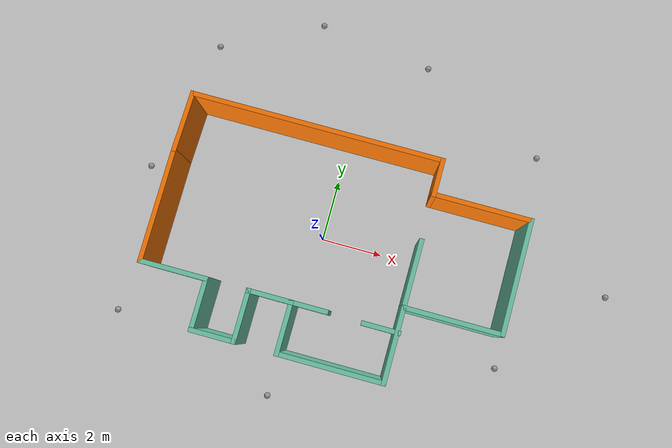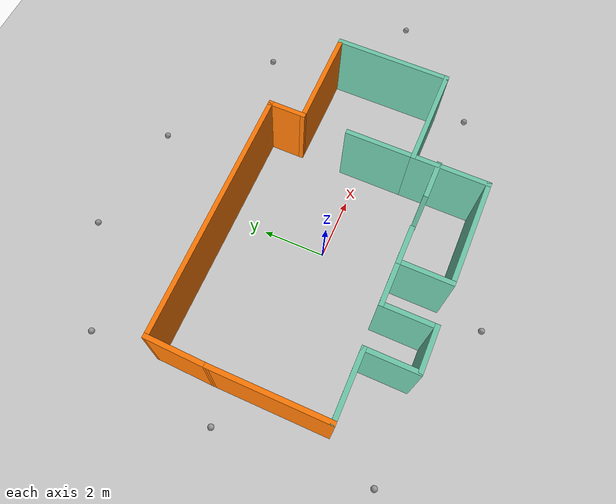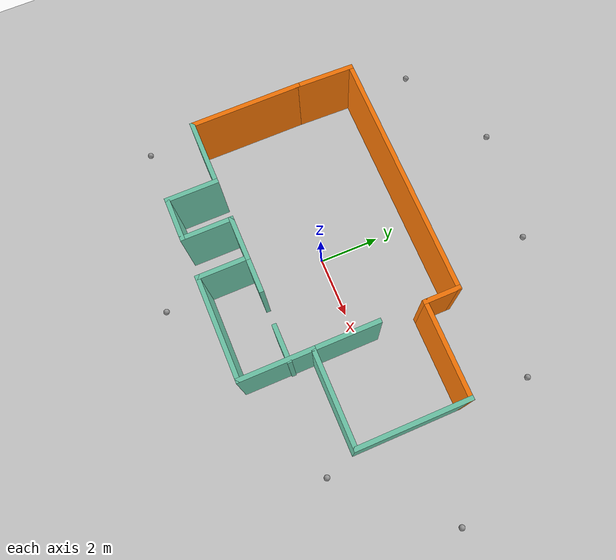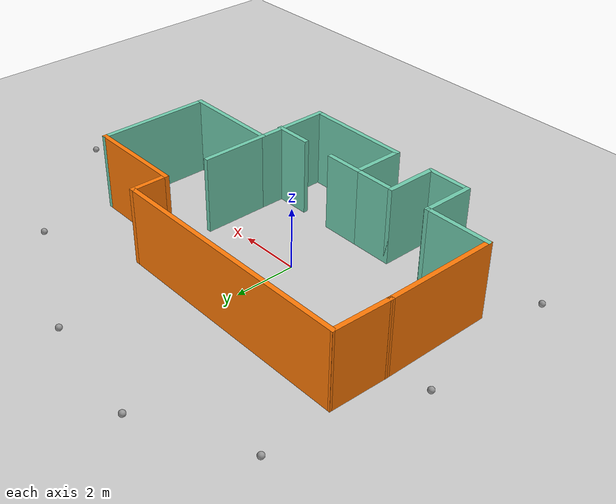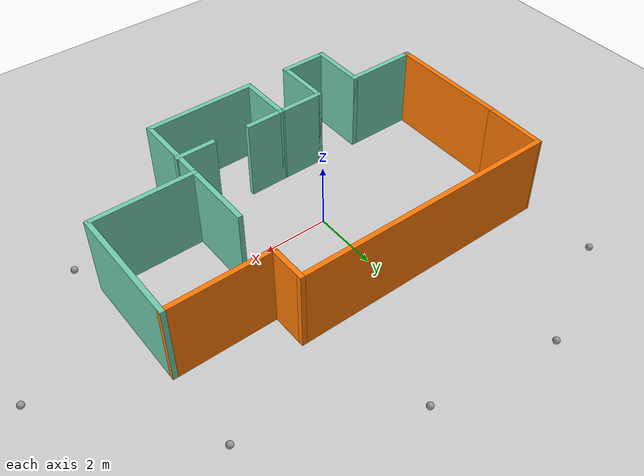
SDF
<sdf version="1.6">
 <world name="default">
  <model name="ground_plane">
   <static>1</static>
   <link name="link">
    <collision name="collision">
     <geometry><plane><normal>0 0 1</normal><size>100 100</size></plane></geometry>
     <surface>
      <contact><collide_bitmask>65535</collide_bitmask></contact>
      <friction><ode><mu>100</mu><mu2>50</mu2></ode></friction>
     </surface>
    </collision>
    <visual name="visual">
     <cast_shadows>0</cast_shadows>
     <geometry><plane><normal>0 0 1</normal><size>100 100</size></plane></geometry>
     <material>
      <script><uri>file://media/materials/scripts/gazebo.material</uri><name>Gazebo/Grey</name></script>
     </material>
    </visual>
   </link>
  </model>
  <light name="sun" type="directional">
   <pose>0 0 10 0 -0 0</pose>
   <diffuse>0.8 0.8 0.8 1</diffuse>
   <specular>0.2 0.2 0.2 1</specular>
   <attenuation>
    <range>1000</range>
    <constant>0.9</constant>
    <linear>0.01</linear>
    <quadratic>0.001</quadratic>
   </attenuation>
   <direction>-0.5 0.1 -0.9</direction>
  </light>
  <gravity>0 0 -9.8</gravity>
  <magnetic_field>6e-06 2.3e-05 -4.2e-05</magnetic_field>
  <atmosphere type="adiabatic"/>
  <physics name="default_physics" default="0" type="ode">
   <max_step_size>0.001</max_step_size>
   <real_time_factor>1</real_time_factor>
   <real_time_update_rate>1000</real_time_update_rate>
  </physics>
  <scene><ambient>0.4 0.4 0.4 1</ambient><background>0.7 0.7 0.7 1</background><shadows>1</shadows></scene>
  <spherical_coordinates>
   <surface_model>EARTH_WGS84</surface_model>
   <latitude_deg>0</latitude_deg>
   <longitude_deg>0</longitude_deg>
   <elevation>0</elevation>
   <heading_deg>0</heading_deg>
  </spherical_coordinates>
  <model name="environment">
   <pose>0.5715 -0.356155 0 0 -0 0</pose>
   <link name="Wall_1">
    <collision name="Wall_1_Collision">
     <geometry><box><size>3.75 0.15 2.5</size></box></geometry>
     <pose>0 0 1.25 0 -0 0</pose>
    </collision>
    <visual name="Wall_1_Visual">
     <pose>0 0 1.25 0 -0 0</pose>
     <geometry><box><size>3.75 0.15 2.5</size></box></geometry>
     <material>
      <script><uri>file://media/materials/scripts/gazebo.material</uri><name>Gazebo/Grey</name></script>
      <ambient>0.996078 0.47451 0.0196078 1</ambient>
     </material>
     <meta><layer>0</layer></meta>
    </visual>
    <pose>-5.624 -0.125999 0 0 0 -1.5708</pose>
   </link>
   <link name="Wall_10">
    <collision name="Wall_10_Collision">
     <geometry><box><size>3.25 0.15 2.5</size></box></geometry>
     <pose>0 0 1.25 0 -0 0</pose>
    </collision>
    <visual name="Wall_10_Visual">
     <pose>0 0 1.25 0 -0 0</pose>
     <geometry><box><size>3.25 0.15 2.5</size></box></geometry>
     <material>
      <script><uri>file://media/materials/scripts/gazebo.material</uri><name>Gazebo/Grey</name></script>
      <ambient>0.435294 0.796078 0.67451 1</ambient>
     </material>
     <meta><layer>0</layer></meta>
    </visual>
    <pose>4.076 -1.176 0 0 -0 0</pose>
   </link>
   <link name="Wall_11">
    <collision name="Wall_11_Collision">
     <geometry><box><size>3.75 0.15 2.5</size></box></geometry>
     <pose>0 0 1.25 0 -0 0</pose>
    </collision>
    <visual name="Wall_11_Visual">
     <pose>0 0 1.25 0 -0 0</pose>
     <geometry><box><size>3.75 0.15 2.5</size></box></geometry>
     <material>
      <script><uri>file://media/materials/scripts/gazebo.material</uri><name>Gazebo/Grey</name></script>
      <ambient>0.435294 0.796078 0.67451 1</ambient>
     </material>
     <meta><layer>0</layer></meta>
    </visual>
    <pose>5.626 0.624001 0 0 -0 1.5708</pose>
   </link>
   <link name="Wall_12">
    <collision name="Wall_12_Collision">
     <geometry><box><size>3.25 0.15 2.5</size></box></geometry>
     <pose>0 0 1.25 0 -0 0</pose>
    </collision>
    <visual name="Wall_12_Visual">
     <pose>0 0 1.25 0 -0 0</pose>
     <geometry><box><size>3.25 0.15 2.5</size></box></geometry>
     <material>
      <script><uri>file://media/materials/scripts/gazebo.material</uri><name>Gazebo/Grey</name></script>
      <ambient>0.996078 0.47451 0.0196078 1</ambient>
     </material>
     <meta><layer>0</layer></meta>
    </visual>
    <pose>4.076 2.424 0 0 -0 3.14159</pose>
   </link>
   <link name="Wall_14">
    <collision name="Wall_14_Collision">
     <geometry><box><size>1.25 0.15 2.5</size></box></geometry>
     <pose>0 0 1.25 0 -0 0</pose>
    </collision>
    <visual name="Wall_14_Visual">
     <pose>0 0 1.25 0 -0 0</pose>
     <geometry><box><size>1.25 0.15 2.5</size></box></geometry>
     <material>
      <script><uri>file://media/materials/scripts/gazebo.material</uri><name>Gazebo/Grey</name></script>
      <ambient>0.996078 0.47451 0.0196078 1</ambient>
     </material>
     <meta><layer>0</layer></meta>
    </visual>
    <pose>2.526 2.974 0 0 -0 1.5708</pose>
   </link>
   <link name="Wall_15">
    <collision name="Wall_15_Collision">
     <geometry><box><size>8.25 0.15 2.5</size></box></geometry>
     <pose>0 0 1.25 0 -0 0</pose>
    </collision>
    <visual name="Wall_15_Visual">
     <pose>0 0 1.25 0 -0 0</pose>
     <geometry><box><size>8.25 0.15 2.5</size></box></geometry>
     <material>
      <script><uri>file://media/materials/scripts/gazebo.material</uri><name>Gazebo/Grey</name></script>
      <ambient>0.996078 0.47451 0.0196078 1</ambient>
     </material>
     <meta><layer>0</layer></meta>
    </visual>
    <pose>-1.524 3.524 0 0 -0 3.14159</pose>
   </link>
   <link name="Wall_16">
    <collision name="Wall_16_Collision">
     <geometry><box><size>2.00068 0.15 2.5</size></box></geometry>
     <pose>0 0 1.25 0 -0 0</pose>
    </collision>
    <visual name="Wall_16_Visual">
     <pose>0 0 1.25 0 -0 0</pose>
     <geometry><box><size>2.00068 0.15 2.5</size></box></geometry>
     <material>
      <script><uri>file://media/materials/scripts/gazebo.material</uri><name>Gazebo/Grey</name></script>
      <ambient>0.996078 0.47451 0.0196078 1</ambient>
     </material>
     <meta><layer>0</layer></meta>
    </visual>
    <pose>-5.599 2.599 0 0 0 -1.59782</pose>
   </link>
   <link name="Wall_18">
    <collision name="Wall_18_Collision">
     <geometry><box><size>1.25 0.15 2.5</size></box></geometry>
     <pose>0 0 1.25 0 -0 0</pose>
    </collision>
    <visual name="Wall_18_Visual">
     <pose>0 0 1.25 0 -0 0</pose>
     <geometry><box><size>1.25 0.15 2.5</size></box></geometry>
     <material>
      <script><uri>file://media/materials/scripts/gazebo.material</uri><name>Gazebo/Grey</name></script>
      <ambient>0.435294 0.796078 0.67451 1</ambient>
     </material>
     <meta><layer>0</layer></meta>
    </visual>
    <pose>-0.274001 -1.926 0 0 -0 0</pose>
   </link>
   <link name="Wall_2">
    <collision name="Wall_2_Collision">
     <geometry><box><size>2.25 0.15 2.5</size></box></geometry>
     <pose>0 0 1.25 0 -0 0</pose>
    </collision>
    <visual name="Wall_2_Visual">
     <pose>0 0 1.25 0 -0 0</pose>
     <geometry><box><size>2.25 0.15 2.5</size></box></geometry>
     <material>
      <script><uri>file://media/materials/scripts/gazebo.material</uri><name>Gazebo/Grey</name></script>
      <ambient>0.435294 0.796078 0.67451 1</ambient>
     </material>
     <meta><layer>0</layer></meta>
    </visual>
    <pose>-4.574 -1.926 0 0 -0 0</pose>
   </link>
   <link name="Wall_20">
    <collision name="Wall_20_Collision">
     <geometry><box><size>1.25 0.15 2.5</size></box></geometry>
     <pose>0 0 1.25 0 -0 0</pose>
    </collision>
    <visual name="Wall_20_Visual">
     <pose>0 0 1.25 0 -0 0</pose>
     <geometry><box><size>1.25 0.15 2.5</size></box></geometry>
     <material>
      <script><uri>file://media/materials/scripts/gazebo.material</uri><name>Gazebo/Grey</name></script>
      <ambient>0.435294 0.796078 0.67451 1</ambient>
     </material>
     <meta><layer>0</layer></meta>
    </visual>
    <pose>2.01717 -1.95726 0 0 -0 3.14159</pose>
   </link>
   <link name="Wall_22">
    <collision name="Wall_22_Collision">
     <geometry><box><size>2.25 0.15 2.5</size></box></geometry>
     <pose>0 0 1.25 0 -0 0</pose>
    </collision>
    <visual name="Wall_22_Visual">
     <pose>0 0 1.25 0 -0 0</pose>
     <geometry><box><size>2.25 0.15 2.5</size></box></geometry>
     <material>
      <script><uri>file://media/materials/scripts/gazebo.material</uri><name>Gazebo/Grey</name></script>
      <ambient>0.435294 0.796078 0.67451 1</ambient>
     </material>
     <meta><layer>0</layer></meta>
    </visual>
    <pose>2.526 -0.125999 0 0 -0 1.5708</pose>
   </link>
   <link name="Wall_3">
    <collision name="Wall_3_Collision">
     <geometry><box><size>1.75 0.15 2.5</size></box></geometry>
     <pose>0 0 1.25 0 -0 0</pose>
    </collision>
    <visual name="Wall_3_Visual">
     <pose>0 0 1.25 0 -0 0</pose>
     <geometry><box><size>1.75 0.15 2.5</size></box></geometry>
     <material>
      <script><uri>file://media/materials/scripts/gazebo.material</uri><name>Gazebo/Grey</name></script>
      <ambient>0.435294 0.796078 0.67451 1</ambient>
     </material>
     <meta><layer>0</layer></meta>
    </visual>
    <pose>-3.524 -2.726 0 0 0 -1.5708</pose>
   </link>
   <link name="Wall_4">
    <collision name="Wall_4_Collision">
     <geometry><box><size>1.5 0.15 2.5</size></box></geometry>
     <pose>0 0 1.25 0 -0 0</pose>
    </collision>
    <visual name="Wall_4_Visual">
     <pose>0 0 1.25 0 -0 0</pose>
     <geometry><box><size>1.5 0.15 2.5</size></box></geometry>
     <material>
      <script><uri>file://media/materials/scripts/gazebo.material</uri><name>Gazebo/Grey</name></script>
      <ambient>0.435294 0.796078 0.67451 1</ambient>
     </material>
     <meta><layer>0</layer></meta>
    </visual>
    <pose>-2.849 -3.526 0 0 -0 0</pose>
   </link>
   <link name="Wall_5">
    <collision name="Wall_5_Collision">
     <geometry><box><size>1.75 0.15 2.5</size></box></geometry>
     <pose>0 0 1.25 0 -0 0</pose>
    </collision>
    <visual name="Wall_5_Visual">
     <pose>0 0 1.25 0 -0 0</pose>
     <geometry><box><size>1.75 0.15 2.5</size></box></geometry>
     <material>
      <script><uri>file://media/materials/scripts/gazebo.material</uri><name>Gazebo/Grey</name></script>
      <ambient>0.435294 0.796078 0.67451 1</ambient>
     </material>
     <meta><layer>0</layer></meta>
    </visual>
    <pose>-2.174 -2.726 0 0 -0 1.5708</pose>
   </link>
   <link name="Wall_6">
    <collision name="Wall_6_Collision">
     <geometry><box><size>1.5 0.15 2.5</size></box></geometry>
     <pose>0 0 1.25 0 -0 0</pose>
    </collision>
    <visual name="Wall_6_Visual">
     <pose>0 0 1.25 0 -0 0</pose>
     <geometry><box><size>1.5 0.15 2.5</size></box></geometry>
     <material>
      <script><uri>file://media/materials/scripts/gazebo.material</uri><name>Gazebo/Grey</name></script>
      <ambient>0.435294 0.796078 0.67451 1</ambient>
     </material>
     <meta><layer>0</layer></meta>
    </visual>
    <pose>-1.499 -1.926 0 0 -0 0</pose>
   </link>
   <link name="Wall_7">
    <collision name="Wall_7_Collision">
     <geometry><box><size>1.75 0.15 2.5</size></box></geometry>
     <pose>0 0 1.25 0 -0 0</pose>
    </collision>
    <visual name="Wall_7_Visual">
     <pose>0 0 1.25 0 -0 0</pose>
     <geometry><box><size>1.75 0.15 2.5</size></box></geometry>
     <material>
      <script><uri>file://media/materials/scripts/gazebo.material</uri><name>Gazebo/Grey</name></script>
      <ambient>0.435294 0.796078 0.67451 1</ambient>
     </material>
     <meta><layer>0</layer></meta>
    </visual>
    <pose>-0.824001 -2.726 0 0 0 -1.5708</pose>
   </link>
   <link name="Wall_8">
    <collision name="Wall_8_Collision">
     <geometry><box><size>3.5 0.15 2.5</size></box></geometry>
     <pose>0 0 1.25 0 -0 0</pose>
    </collision>
    <visual name="Wall_8_Visual">
     <pose>0 0 1.25 0 -0 0</pose>
     <geometry><box><size>3.5 0.15 2.5</size></box></geometry>
     <material>
      <script><uri>file://media/materials/scripts/gazebo.material</uri><name>Gazebo/Grey</name></script>
      <ambient>0.435294 0.796078 0.67451 1</ambient>
     </material>
     <meta><layer>0</layer></meta>
    </visual>
    <pose>0.850999 -3.526 0 0 -0 0</pose>
   </link>
   <link name="Wall_9">
    <collision name="Wall_9_Collision">
     <geometry><box><size>2.5 0.15 2.5</size></box></geometry>
     <pose>0 0 1.25 0 -0 0</pose>
    </collision>
    <visual name="Wall_9_Visual">
     <pose>0 0 1.25 0 -0 0</pose>
     <geometry><box><size>2.5 0.15 2.5</size></box></geometry>
     <material>
      <script><uri>file://media/materials/scripts/gazebo.material</uri><name>Gazebo/Grey</name></script>
      <ambient>0.435294 0.796078 0.67451 1</ambient>
     </material>
     <meta><layer>0</layer></meta>
    </visual>
    <pose>2.526 -2.351 0 0 -0 1.5708</pose>
   </link>
   <static>1</static>
  </model>
  <model name="ball">
   <link name="link_0">
    <inertial>
     <mass>1</mass>
     <inertia><ixx>0.1</ixx><ixy>0</ixy><ixz>0</ixz><iyy>0.1</iyy><iyz>0</iyz><izz>0.1</izz></inertia>
    </inertial>
    <visual name="visual">
     <geometry><sphere><radius>0.1</radius></sphere></geometry>
     <material>
      <lighting>1</lighting>
      <script><uri>file://media/materials/scripts/gazebo.material</uri><name>Gazebo/Grey</name></script>
      <shader type="pixel"><normal_map>__default__</normal_map></shader>
      <ambient>1 1 1 1</ambient>
      <diffuse>1 1 1 1</diffuse>
      <specular>1 1 1 1</specular>
      <emissive>1 1 1 1</emissive>
     </material>
    </visual>
    <collision name="collision">
     <geometry><sphere><radius>0.1</radius></sphere></geometry>
     <surface>
      <friction>
       <ode><mu>1</mu><mu2>1</mu2><fdir1>0 0 0</fdir1><slip1>0</slip1><slip2>0</slip2></ode>
       <torsional>
        <coefficient>1</coefficient>
        <patch_radius>0</patch_radius>
        <surface_radius>0</surface_radius>
        <use_patch_radius>1</use_patch_radius>
        <ode><slip>0</slip></ode>
       </torsional>
      </friction>
      <bounce><restitution_coefficient>0</restitution_coefficient><threshold>1e+06</threshold></bounce>
      <contact>
       <collide_without_contact>0</collide_without_contact>
       <collide_without_contact_bitmask>1</collide_without_contact_bitmask>
       <collide_bitmask>1</collide_bitmask>
       <ode>
        <soft_cfm>0</soft_cfm>
        <soft_erp>0.2</soft_erp>
        <kp>1e+13</kp>
        <kd>1</kd>
        <max_vel>0.01</max_vel>
        <min_depth>0</min_depth>
       </ode>
       <bullet>
        <split_impulse>1</split_impulse>
        <split_impulse_penetration_threshold>-0.01</split_impulse_penetration_threshold>
        <soft_cfm>0</soft_cfm>
        <soft_erp>0.2</soft_erp>
        <kp>1e+13</kp>
        <kd>1</kd>
       </bullet>
      </contact>
     </surface>
    </collision>
   </link>
   <static>0</static>
   <pose>6.20475 4.53982 0.1 0 -0 0</pose>
  </model>
  <model name="ball_0">
   <link name="link_0">
    <inertial>
     <mass>1</mass>
     <inertia><ixx>0.1</ixx><ixy>0</ixy><ixz>0</ixz><iyy>0.1</iyy><iyz>0</iyz><izz>0.1</izz></inertia>
    </inertial>
    <visual name="visual">
     <geometry><sphere><radius>0.1</radius></sphere></geometry>
     <material>
      <lighting>1</lighting>
      <script><uri>file://media/materials/scripts/gazebo.material</uri><name>Gazebo/Grey</name></script>
      <shader type="pixel"><normal_map>__default__</normal_map></shader>
      <ambient>1 1 1 1</ambient>
      <diffuse>1 1 1 1</diffuse>
      <specular>1 1 1 1</specular>
      <emissive>1 1 1 1</emissive>
     </material>
    </visual>
    <collision name="collision">
     <geometry><sphere><radius>0.1</radius></sphere></geometry>
     <surface>
      <friction>
       <ode><mu>1</mu><mu2>1</mu2><fdir1>0 0 0</fdir1><slip1>0</slip1><slip2>0</slip2></ode>
       <torsional>
        <coefficient>1</coefficient>
        <patch_radius>0</patch_radius>
        <surface_radius>0</surface_radius>
        <use_patch_radius>1</use_patch_radius>
        <ode><slip>0</slip></ode>
       </torsional>
      </friction>
      <bounce><restitution_coefficient>0</restitution_coefficient><threshold>1e+06</threshold></bounce>
      <contact>
       <collide_without_contact>0</collide_without_contact>
       <collide_without_contact_bitmask>1</collide_without_contact_bitmask>
       <collide_bitmask>1</collide_bitmask>
       <ode>
        <soft_cfm>0</soft_cfm>
        <soft_erp>0.2</soft_erp>
        <kp>1e+13</kp>
        <kd>1</kd>
        <max_vel>0.01</max_vel>
        <min_depth>0</min_depth>
       </ode>
       <bullet>
        <split_impulse>1</split_impulse>
        <split_impulse_penetration_threshold>-0.01</split_impulse_penetration_threshold>
        <soft_cfm>0</soft_cfm>
        <soft_erp>0.2</soft_erp>
        <kp>1e+13</kp>
        <kd>1</kd>
       </bullet>
      </contact>
     </surface>
    </collision>
   </link>
   <static>0</static>
   <pose>6.5504 -2.58598 0.1 0 -0 0</pose>
  </model>
  <model name="ball_1">
   <link name="link_0">
    <inertial>
     <mass>1</mass>
     <inertia><ixx>0.1</ixx><ixy>0</ixy><ixz>0</ixz><iyy>0.1</iyy><iyz>0</iyz><izz>0.1</izz></inertia>
    </inertial>
    <visual name="visual">
     <geometry><sphere><radius>0.1</radius></sphere></geometry>
     <material>
      <lighting>1</lighting>
      <script><uri>file://media/materials/scripts/gazebo.material</uri><name>Gazebo/Grey</name></script>
      <shader type="pixel"><normal_map>__default__</normal_map></shader>
      <ambient>1 1 1 1</ambient>
      <diffuse>1 1 1 1</diffuse>
      <specular>1 1 1 1</specular>
      <emissive>1 1 1 1</emissive>
     </material>
    </visual>
    <collision name="collision">
     <geometry><sphere><radius>0.1</radius></sphere></geometry>
     <surface>
      <friction>
       <ode><mu>1</mu><mu2>1</mu2><fdir1>0 0 0</fdir1><slip1>0</slip1><slip2>0</slip2></ode>
       <torsional>
        <coefficient>1</coefficient>
        <patch_radius>0</patch_radius>
        <surface_radius>0</surface_radius>
        <use_patch_radius>1</use_patch_radius>
        <ode><slip>0</slip></ode>
       </torsional>
      </friction>
      <bounce><restitution_coefficient>0</restitution_coefficient><threshold>1e+06</threshold></bounce>
      <contact>
       <collide_without_contact>0</collide_without_contact>
       <collide_without_contact_bitmask>1</collide_without_contact_bitmask>
       <collide_bitmask>1</collide_bitmask>
       <ode>
        <soft_cfm>0</soft_cfm>
        <soft_erp>0.2</soft_erp>
        <kp>1e+13</kp>
        <kd>1</kd>
        <max_vel>0.01</max_vel>
        <min_depth>0</min_depth>
       </ode>
       <bullet>
        <split_impulse>1</split_impulse>
        <split_impulse_penetration_threshold>-0.01</split_impulse_penetration_threshold>
        <soft_cfm>0</soft_cfm>
        <soft_erp>0.2</soft_erp>
        <kp>1e+13</kp>
        <kd>1</kd>
       </bullet>
      </contact>
     </surface>
    </collision>
   </link>
   <static>0</static>
   <pose>-0.365843 -5.37251 0.1 0 -0 0</pose>
  </model>
  <model name="ball_2">
   <link name="link_0">
    <inertial>
     <mass>1</mass>
     <inertia><ixx>0.1</ixx><ixy>0</ixy><ixz>0</ixz><iyy>0.1</iyy><iyz>0</iyz><izz>0.1</izz></inertia>
    </inertial>
    <visual name="visual">
     <geometry><sphere><radius>0.1</radius></sphere></geometry>
     <material>
      <lighting>1</lighting>
      <script><uri>file://media/materials/scripts/gazebo.material</uri><name>Gazebo/Grey</name></script>
      <shader type="pixel"><normal_map>__default__</normal_map></shader>
      <ambient>1 1 1 1</ambient>
      <diffuse>1 1 1 1</diffuse>
      <specular>1 1 1 1</specular>
      <emissive>1 1 1 1</emissive>
     </material>
    </visual>
    <collision name="collision">
     <geometry><sphere><radius>0.1</radius></sphere></geometry>
     <surface>
      <friction>
       <ode><mu>1</mu><mu2>1</mu2><fdir1>0 0 0</fdir1><slip1>0</slip1><slip2>0</slip2></ode>
       <torsional>
        <coefficient>1</coefficient>
        <patch_radius>0</patch_radius>
        <surface_radius>0</surface_radius>
        <use_patch_radius>1</use_patch_radius>
        <ode><slip>0</slip></ode>
       </torsional>
      </friction>
      <bounce><restitution_coefficient>0</restitution_coefficient><threshold>1e+06</threshold></bounce>
      <contact>
       <collide_without_contact>0</collide_without_contact>
       <collide_without_contact_bitmask>1</collide_without_contact_bitmask>
       <collide_bitmask>1</collide_bitmask>
       <ode>
        <soft_cfm>0</soft_cfm>
        <soft_erp>0.2</soft_erp>
        <kp>1e+13</kp>
        <kd>1</kd>
        <max_vel>0.01</max_vel>
        <min_depth>0</min_depth>
       </ode>
       <bullet>
        <split_impulse>1</split_impulse>
        <split_impulse_penetration_threshold>-0.01</split_impulse_penetration_threshold>
        <soft_cfm>0</soft_cfm>
        <soft_erp>0.2</soft_erp>
        <kp>1e+13</kp>
        <kd>1</kd>
       </bullet>
      </contact>
     </surface>
    </collision>
   </link>
   <static>0</static>
   <pose>-6.2168 0.881245 0.1 0 -0 0</pose>
  </model>
  <model name="ball_3">
   <link name="link_0">
    <inertial>
     <mass>1</mass>
     <inertia><ixx>0.1</ixx><ixy>0</ixy><ixz>0</ixz><iyy>0.1</iyy><iyz>0</iyz><izz>0.1</izz></inertia>
    </inertial>
    <visual name="visual">
     <geometry><sphere><radius>0.1</radius></sphere></geometry>
     <material>
      <lighting>1</lighting>
      <script><uri>file://media/materials/scripts/gazebo.material</uri><name>Gazebo/Grey</name></script>
      <shader type="pixel"><normal_map>__default__</normal_map></shader>
      <ambient>1 1 1 1</ambient>
      <diffuse>1 1 1 1</diffuse>
      <specular>1 1 1 1</specular>
      <emissive>1 1 1 1</emissive>
     </material>
    </visual>
    <collision name="collision">
     <geometry><sphere><radius>0.1</radius></sphere></geometry>
     <surface>
      <friction>
       <ode><mu>1</mu><mu2>1</mu2><fdir1>0 0 0</fdir1><slip1>0</slip1><slip2>0</slip2></ode>
       <torsional>
        <coefficient>1</coefficient>
        <patch_radius>0</patch_radius>
        <surface_radius>0</surface_radius>
        <use_patch_radius>1</use_patch_radius>
        <ode><slip>0</slip></ode>
       </torsional>
      </friction>
      <bounce><restitution_coefficient>0</restitution_coefficient><threshold>1e+06</threshold></bounce>
      <contact>
       <collide_without_contact>0</collide_without_contact>
       <collide_without_contact_bitmask>1</collide_without_contact_bitmask>
       <collide_bitmask>1</collide_bitmask>
       <ode>
        <soft_cfm>0</soft_cfm>
        <soft_erp>0.2</soft_erp>
        <kp>1e+13</kp>
        <kd>1</kd>
        <max_vel>0.01</max_vel>
        <min_depth>0</min_depth>
       </ode>
       <bullet>
        <split_impulse>1</split_impulse>
        <split_impulse_penetration_threshold>-0.01</split_impulse_penetration_threshold>
        <soft_cfm>0</soft_cfm>
        <soft_erp>0.2</soft_erp>
        <kp>1e+13</kp>
        <kd>1</kd>
       </bullet>
      </contact>
     </surface>
    </collision>
   </link>
   <static>0</static>
   <pose>-1.92287 7.10294 0.1 0 -0 0</pose>
  </model>
  <model name="ball_4">
   <link name="link_0">
    <inertial>
     <mass>1</mass>
     <inertia><ixx>0.1</ixx><ixy>0</ixy><ixz>0</ixz><iyy>0.1</iyy><iyz>0</iyz><izz>0.1</izz></inertia>
    </inertial>
    <visual name="visual">
     <geometry><sphere><radius>0.1</radius></sphere></geometry>
     <material>
      <lighting>1</lighting>
      <script><uri>file://media/materials/scripts/gazebo.material</uri><name>Gazebo/Grey</name></script>
      <shader type="pixel"><normal_map>__default__</normal_map></shader>
      <ambient>1 1 1 1</ambient>
      <diffuse>1 1 1 1</diffuse>
      <specular>1 1 1 1</specular>
      <emissive>1 1 1 1</emissive>
     </material>
    </visual>
    <collision name="collision">
     <geometry><sphere><radius>0.1</radius></sphere></geometry>
     <surface>
      <friction>
       <ode><mu>1</mu><mu2>1</mu2><fdir1>0 0 0</fdir1><slip1>0</slip1><slip2>0</slip2></ode>
       <torsional>
        <coefficient>1</coefficient>
        <patch_radius>0</patch_radius>
        <surface_radius>0</surface_radius>
        <use_patch_radius>1</use_patch_radius>
        <ode><slip>0</slip></ode>
       </torsional>
      </friction>
      <bounce><restitution_coefficient>0</restitution_coefficient><threshold>1e+06</threshold></bounce>
      <contact>
       <collide_without_contact>0</collide_without_contact>
       <collide_without_contact_bitmask>1</collide_without_contact_bitmask>
       <collide_bitmask>1</collide_bitmask>
       <ode>
        <soft_cfm>0</soft_cfm>
        <soft_erp>0.2</soft_erp>
        <kp>1e+13</kp>
        <kd>1</kd>
        <max_vel>0.01</max_vel>
        <min_depth>0</min_depth>
       </ode>
       <bullet>
        <split_impulse>1</split_impulse>
        <split_impulse_penetration_threshold>-0.01</split_impulse_penetration_threshold>
        <soft_cfm>0</soft_cfm>
        <soft_erp>0.2</soft_erp>
        <kp>1e+13</kp>
        <kd>1</kd>
       </bullet>
      </contact>
     </surface>
    </collision>
   </link>
   <static>0</static>
   <pose>1.90359 6.57613 0.1 0 -0 0</pose>
  </model>
  <model name="ball_5">
   <link name="link_0">
    <inertial>
     <mass>1</mass>
     <inertia><ixx>0.1</ixx><ixy>0</ixy><ixz>0</ixz><iyy>0.1</iyy><iyz>0</iyz><izz>0.1</izz></inertia>
    </inertial>
    <visual name="visual">
     <geometry><sphere><radius>0.1</radius></sphere></geometry>
     <material>
      <lighting>1</lighting>
      <script><uri>file://media/materials/scripts/gazebo.material</uri><name>Gazebo/Grey</name></script>
      <shader type="pixel"><normal_map>__default__</normal_map></shader>
      <ambient>1 1 1 1</ambient>
      <diffuse>1 1 1 1</diffuse>
      <specular>1 1 1 1</specular>
      <emissive>1 1 1 1</emissive>
     </material>
    </visual>
    <collision name="collision">
     <geometry><sphere><radius>0.1</radius></sphere></geometry>
     <surface>
      <friction>
       <ode><mu>1</mu><mu2>1</mu2><fdir1>0 0 0</fdir1><slip1>0</slip1><slip2>0</slip2></ode>
       <torsional>
        <coefficient>1</coefficient>
        <patch_radius>0</patch_radius>
        <surface_radius>0</surface_radius>
        <use_patch_radius>1</use_patch_radius>
        <ode><slip>0</slip></ode>
       </torsional>
      </friction>
      <bounce><restitution_coefficient>0</restitution_coefficient><threshold>1e+06</threshold></bounce>
      <contact>
       <collide_without_contact>0</collide_without_contact>
       <collide_without_contact_bitmask>1</collide_without_contact_bitmask>
       <collide_bitmask>1</collide_bitmask>
       <ode>
        <soft_cfm>0</soft_cfm>
        <soft_erp>0.2</soft_erp>
        <kp>1e+13</kp>
        <kd>1</kd>
        <max_vel>0.01</max_vel>
        <min_depth>0</min_depth>
       </ode>
       <bullet>
        <split_impulse>1</split_impulse>
        <split_impulse_penetration_threshold>-0.01</split_impulse_penetration_threshold>
        <soft_cfm>0</soft_cfm>
        <soft_erp>0.2</soft_erp>
        <kp>1e+13</kp>
        <kd>1</kd>
       </bullet>
      </contact>
     </surface>
    </collision>
   </link>
   <static>0</static>
   <pose>-5.14727 5.45741 0.1 0 -0 0</pose>
  </model>
  <model name="ball_6">
   <link name="link_0">
    <inertial>
     <mass>1</mass>
     <inertia><ixx>0.1</ixx><ixy>0</ixy><ixz>0</ixz><iyy>0.1</iyy><iyz>0</iyz><izz>0.1</izz></inertia>
    </inertial>
    <visual name="visual">
     <geometry><sphere><radius>0.1</radius></sphere></geometry>
     <material>
      <lighting>1</lighting>
      <script><uri>file://media/materials/scripts/gazebo.material</uri><name>Gazebo/Grey</name></script>
      <shader type="pixel"><normal_map>__default__</normal_map></shader>
      <ambient>1 1 1 1</ambient>
      <diffuse>1 1 1 1</diffuse>
      <specular>1 1 1 1</specular>
      <emissive>1 1 1 1</emissive>
     </material>
    </visual>
    <collision name="collision">
     <geometry><sphere><radius>0.1</radius></sphere></geometry>
     <surface>
      <friction>
       <ode><mu>1</mu><mu2>1</mu2><fdir1>0 0 0</fdir1><slip1>0</slip1><slip2>0</slip2></ode>
       <torsional>
        <coefficient>1</coefficient>
        <patch_radius>0</patch_radius>
        <surface_radius>0</surface_radius>
        <use_patch_radius>1</use_patch_radius>
        <ode><slip>0</slip></ode>
       </torsional>
      </friction>
      <bounce><restitution_coefficient>0</restitution_coefficient><threshold>1e+06</threshold></bounce>
      <contact>
       <collide_without_contact>0</collide_without_contact>
       <collide_without_contact_bitmask>1</collide_without_contact_bitmask>
       <collide_bitmask>1</collide_bitmask>
       <ode>
        <soft_cfm>0</soft_cfm>
        <soft_erp>0.2</soft_erp>
        <kp>1e+13</kp>
        <kd>1</kd>
        <max_vel>0.01</max_vel>
        <min_depth>0</min_depth>
       </ode>
       <bullet>
        <split_impulse>1</split_impulse>
        <split_impulse_penetration_threshold>-0.01</split_impulse_penetration_threshold>
        <soft_cfm>0</soft_cfm>
        <soft_erp>0.2</soft_erp>
        <kp>1e+13</kp>
        <kd>1</kd>
       </bullet>
      </contact>
     </surface>
    </collision>
   </link>
   <static>0</static>
   <pose>9.50687 0.611719 0.1 0 -0 0</pose>
  </model>
  <model name="ball_7">
   <link name="link_0">
    <inertial>
     <mass>1</mass>
     <inertia><ixx>0.1</ixx><ixy>0</ixy><ixz>0</ixz><iyy>0.1</iyy><iyz>0</iyz><izz>0.1</izz></inertia>
    </inertial>
    <visual name="visual">
     <geometry><sphere><radius>0.1</radius></sphere></geometry>
     <material>
      <lighting>1</lighting>
      <script><uri>file://media/materials/scripts/gazebo.material</uri><name>Gazebo/Grey</name></script>
      <shader type="pixel"><normal_map>__default__</normal_map></shader>
      <ambient>1 1 1 1</ambient>
      <diffuse>1 1 1 1</diffuse>
      <specular>1 1 1 1</specular>
      <emissive>1 1 1 1</emissive>
     </material>
    </visual>
    <collision name="collision">
     <geometry><sphere><radius>0.1</radius></sphere></geometry>
     <surface>
      <friction>
       <ode><mu>1</mu><mu2>1</mu2><fdir1>0 0 0</fdir1><slip1>0</slip1><slip2>0</slip2></ode>
       <torsional>
        <coefficient>1</coefficient>
        <patch_radius>0</patch_radius>
        <surface_radius>0</surface_radius>
        <use_patch_radius>1</use_patch_radius>
        <ode><slip>0</slip></ode>
       </torsional>
      </friction>
      <bounce><restitution_coefficient>0</restitution_coefficient><threshold>1e+06</threshold></bounce>
      <contact>
       <collide_without_contact>0</collide_without_contact>
       <collide_without_contact_bitmask>1</collide_without_contact_bitmask>
       <collide_bitmask>1</collide_bitmask>
       <ode>
        <soft_cfm>0</soft_cfm>
        <soft_erp>0.2</soft_erp>
        <kp>1e+13</kp>
        <kd>1</kd>
        <max_vel>0.01</max_vel>
        <min_depth>0</min_depth>
       </ode>
       <bullet>
        <split_impulse>1</split_impulse>
        <split_impulse_penetration_threshold>-0.01</split_impulse_penetration_threshold>
        <soft_cfm>0</soft_cfm>
        <soft_erp>0.2</soft_erp>
        <kp>1e+13</kp>
        <kd>1</kd>
       </bullet>
      </contact>
     </surface>
    </collision>
   </link>
   <static>0</static>
   <pose>-5.87085 -3.99451 0.1 0 -0 0</pose>
  </model>
 </world>
</sdf>
